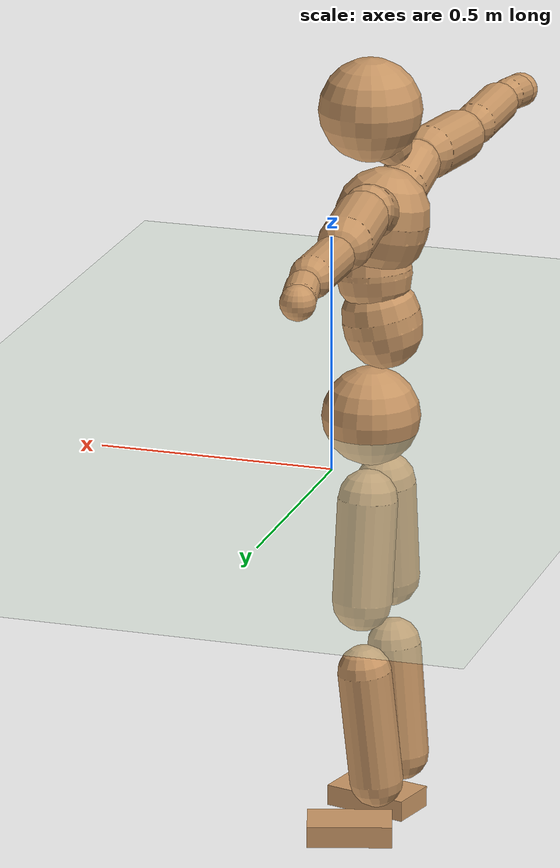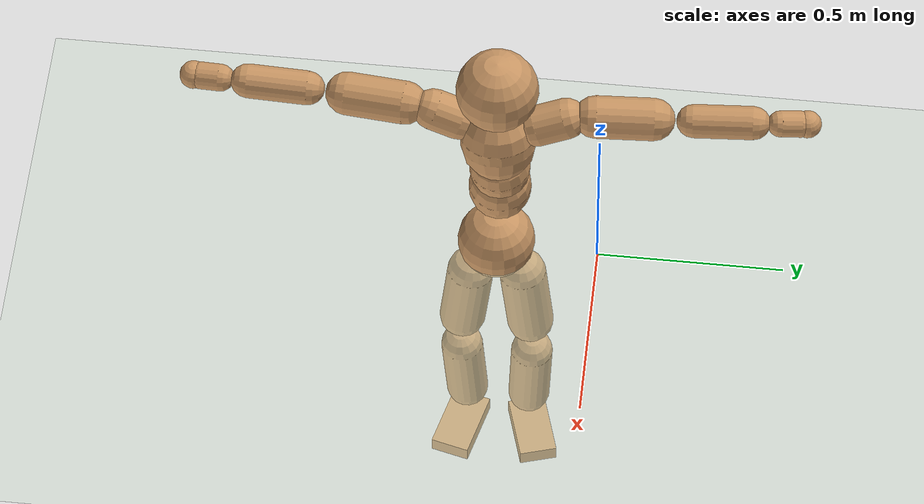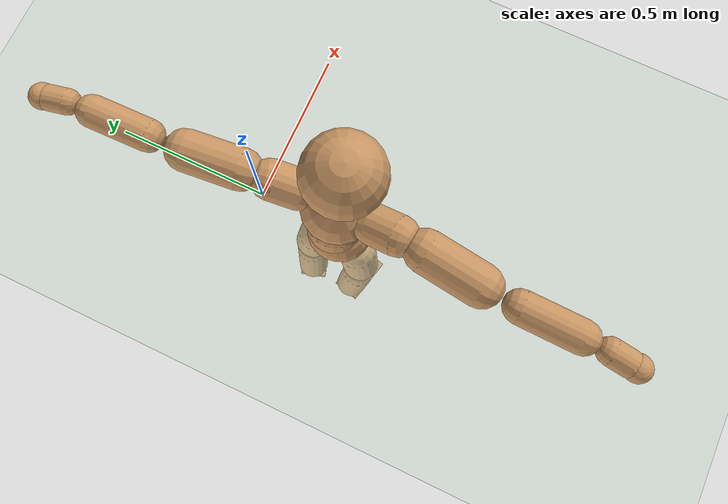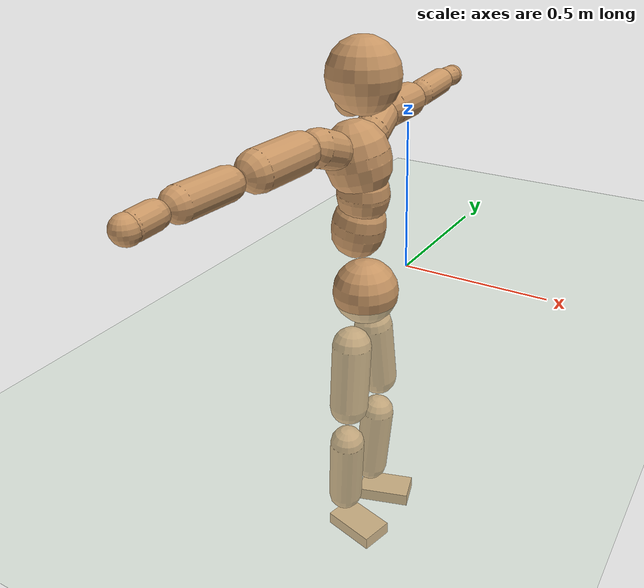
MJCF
<mujoco model="humanoid">
  <compiler coordinate="local"/>
  <default>
    <joint damping="0.0" armature="0.01" stiffness="0.0" limited="true"/>
    <geom conaffinity="1" condim="3" contype="7" margin="0.001" rgba="0.8 0.6 .4 1"/>
  </default>
  <asset>
    <texture type="skybox" builtin="gradient" rgb1=".4 .5 .6" rgb2="0 0 0" width="100" height="100"/>
    <texture builtin="flat" height="1278" mark="cross" markrgb="1 1 1" name="texgeom" random="0.01" rgb1="0.8 0.6 0.4" rgb2="0.8 0.6 0.4" type="cube" width="127"/>
    <texture builtin="checker" height="100" name="texplane" rgb1="0 0 0" rgb2="0.8 0.8 0.8" type="2d" width="100"/>
    <material name="MatPlane" reflectance="0.5" shininess="1" specular="1" texrepeat="60 60" texture="texplane"/>
    <material name="geom" texture="texgeom" texuniform="true"/>
  </asset>
  <worldbody>
    <light cutoff="100" diffuse="1 1 1" dir="-0 0 -1.3" directional="true" exponent="1" pos="0 0 1.3" specular=".1 .1 .1"/>
    <geom conaffinity="1" condim="3" name="floor" pos="0 0 0" rgba="0.8 0.9 0.8 1" size="100 100 .2" type="plane" material="MatPlane"/>
    <body name="Pelvis" pos="-0.0013 -0.2726 0.0303">
      <freejoint name="Pelvis"/>
      <geom type="sphere" contype="1" conaffinity="1" density="500" size="0.1047" pos="0.0000 0.0000 0.0000" name="Pelvis"/>
      <body name="L_Hip" pos="-0.0156 0.0623 -0.0874">
        <joint name="L_Hip_x" type="hinge" pos="0 0 0" axis="1 0 0" stiffness="800" damping="80" armature="0.02" range="-180.0000 180.0000"/>
        <joint name="L_Hip_y" type="hinge" pos="0 0 0" axis="0 1 0" stiffness="800" damping="80" armature="0.02" range="-180.0000 180.0000"/>
        <joint name="L_Hip_z" type="hinge" pos="0 0 0" axis="0 0 1" stiffness="800" damping="80" armature="0.02" range="-180.0000 180.0000"/>
        <geom type="capsule" contype="1" conaffinity="1" density="500" fromto="0.0014 0.0075 -0.0736 0.0057 0.0302 -0.2944" size="0.0635" name="L_Hip"/>
        <body name="L_Knee" pos="0.0071 0.0377 -0.368">
          <joint name="L_Knee_x" type="hinge" pos="0 0 0" axis="1 0 0" stiffness="800" damping="80" armature="0.02" range="-180.0000 180.0000"/>
          <joint name="L_Knee_y" type="hinge" pos="0 0 0" axis="0 1 0" stiffness="800" damping="80" armature="0.02" range="-180.0000 180.0000"/>
          <joint name="L_Knee_z" type="hinge" pos="0 0 0" axis="0 0 1" stiffness="800" damping="80" armature="0.02" range="-180.0000 180.0000"/>
          <geom type="capsule" contype="1" conaffinity="1" density="500" fromto="-0.0081 -0.0033 -0.0823 -0.0323 -0.0131 -0.3291" size="0.0575" name="L_Knee"/>
          <body name="L_Ankle" pos="-0.0403 -0.0163 -0.4114">
            <joint name="L_Ankle_x" type="hinge" pos="0 0 0" axis="1 0 0" stiffness="800" damping="80" armature="0.02" range="-180.0000 180.0000"/>
            <joint name="L_Ankle_y" type="hinge" pos="0 0 0" axis="0 1 0" stiffness="800" damping="80" armature="0.02" range="-180.0000 180.0000"/>
            <joint name="L_Ankle_z" type="hinge" pos="0 0 0" axis="0 0 1" stiffness="800" damping="80" armature="0.02" range="-180.0000 180.0000"/>
            <geom type="box" contype="1" conaffinity="1" density="500" pos="0.0625 0.0186 -0.0298" size="0.0905 0.0515 0.0234" quat="0.9896 0.0000 0.0000 0.1439" name="L_Ankle"/>
            <body name="L_Toe" pos="0.1251 0.0372 -0.0596">
              <joint name="L_Toe_x" type="hinge" pos="0 0 0" axis="1 0 0" stiffness="500" damping="50" armature="0.02" range="-180.0000 180.0000"/>
              <joint name="L_Toe_y" type="hinge" pos="0 0 0" axis="0 1 0" stiffness="500" damping="50" armature="0.02" range="-180.0000 180.0000"/>
              <joint name="L_Toe_z" type="hinge" pos="0 0 0" axis="0 0 1" stiffness="500" damping="50" armature="0.02" range="-180.0000 180.0000"/>
              <geom type="box" contype="1" conaffinity="1" density="500" pos="0.0000 0.0000 0.0290" size="0.0011 0.0025 0.0011" quat="0.9889 0.0000 0.0000 0.1489" name="L_Toe"/>
            </body>
          </body>
        </body>
      </body>
      <body name="R_Hip" pos="-0.0109 -0.064 -0.096">
        <joint name="R_Hip_x" type="hinge" pos="0 0 0" axis="1 0 0" stiffness="800" damping="80" armature="0.02" range="-180.0000 180.0000"/>
        <joint name="R_Hip_y" type="hinge" pos="0 0 0" axis="0 1 0" stiffness="800" damping="80" armature="0.02" range="-180.0000 180.0000"/>
        <joint name="R_Hip_z" type="hinge" pos="0 0 0" axis="0 0 1" stiffness="800" damping="80" armature="0.02" range="-180.0000 180.0000"/>
        <geom type="capsule" contype="1" conaffinity="1" density="500" fromto="-0.0009 -0.0079 -0.0735 -0.0036 -0.0315 -0.2941" size="0.0634" name="R_Hip"/>
        <body name="R_Knee" pos="-0.0045 -0.0394 -0.3676">
          <joint name="R_Knee_x" type="hinge" pos="0 0 0" axis="1 0 0" stiffness="800" damping="80" armature="0.02" range="-180.0000 180.0000"/>
          <joint name="R_Knee_y" type="hinge" pos="0 0 0" axis="0 1 0" stiffness="800" damping="80" armature="0.02" range="-180.0000 180.0000"/>
          <joint name="R_Knee_z" type="hinge" pos="0 0 0" axis="0 0 1" stiffness="800" damping="80" armature="0.02" range="-180.0000 180.0000"/>
          <geom type="capsule" contype="1" conaffinity="1" density="500" fromto="-0.0075 0.0040 -0.0810 -0.0298 0.0159 -0.3242" size="0.0576" name="R_Knee"/>
          <body name="R_Ankle" pos="-0.0373 0.0199 -0.4052">
            <joint name="R_Ankle_x" type="hinge" pos="0 0 0" axis="1 0 0" stiffness="800" damping="80" armature="0.02" range="-180.0000 180.0000"/>
            <joint name="R_Ankle_y" type="hinge" pos="0 0 0" axis="0 1 0" stiffness="800" damping="80" armature="0.02" range="-180.0000 180.0000"/>
            <joint name="R_Ankle_z" type="hinge" pos="0 0 0" axis="0 0 1" stiffness="800" damping="80" armature="0.02" range="-180.0000 180.0000"/>
            <geom type="box" contype="1" conaffinity="1" density="500" pos="0.0670 -0.0169 -0.0303" size="0.0927 0.0533 0.0227" quat="0.9924 0.0000 0.0000 -0.1234" name="R_Ankle"/>
            <body name="R_Toe" pos="0.1339 -0.0338 -0.0606">
              <joint name="R_Toe_x" type="hinge" pos="0 0 0" axis="1 0 0" stiffness="500" damping="50" armature="0.02" range="-180.0000 180.0000"/>
              <joint name="R_Toe_y" type="hinge" pos="0 0 0" axis="0 1 0" stiffness="500" damping="50" armature="0.02" range="-180.0000 180.0000"/>
              <joint name="R_Toe_z" type="hinge" pos="0 0 0" axis="0 0 1" stiffness="500" damping="50" armature="0.02" range="-180.0000 180.0000"/>
              <geom type="box" contype="1" conaffinity="1" density="500" pos="0.0000 0.0000 0.0316" size="0.0011 0.0026 0.0012" quat="0.9934 0.0000 0.0000 -0.1147" name="R_Toe"/>
            </body>
          </body>
        </body>
      </body>
      <body name="Torso" pos="-0.0411 0.0042 0.1346">
        <joint name="Torso_x" type="hinge" pos="0 0 0" axis="1 0 0" stiffness="1000" damping="100" armature="0.02" range="-180.0000 180.0000"/>
        <joint name="Torso_y" type="hinge" pos="0 0 0" axis="0 1 0" stiffness="1000" damping="100" armature="0.02" range="-180.0000 180.0000"/>
        <joint name="Torso_z" type="hinge" pos="0 0 0" axis="0 0 1" stiffness="1000" damping="100" armature="0.02" range="-180.0000 180.0000"/>
        <geom type="capsule" contype="1" conaffinity="1" density="500" fromto="0.0185 0.0035 0.0908 0.0123 0.0023 0.0605" size="0.083235" name="Torso"/>
        <body name="Spine" pos="0.0308 0.0059 0.1513">
          <joint name="Spine_x" type="hinge" pos="0 0 0" axis="1 0 0" stiffness="1000" damping="100" armature="0.02" range="-180.0000 180.0000"/>
          <joint name="Spine_y" type="hinge" pos="0 0 0" axis="0 1 0" stiffness="1000" damping="100" armature="0.02" range="-180.0000 180.0000"/>
          <joint name="Spine_z" type="hinge" pos="0 0 0" axis="0 0 1" stiffness="1000" damping="100" armature="0.02" range="-180.0000 180.0000"/>
          <geom type="capsule" contype="1" conaffinity="1" density="500" fromto="0.0030 -0.0018 0.0373 0.0020 -0.0012 0.0249" size="0.080724" name="Spine"/>
          <body name="Chest" pos="0.0049 -0.003 0.0621">
            <joint name="Chest_x" type="hinge" pos="0 0 0" axis="1 0 0" stiffness="1000" damping="100" armature="0.02" range="-180.0000 180.0000"/>
            <joint name="Chest_y" type="hinge" pos="0 0 0" axis="0 1 0" stiffness="1000" damping="100" armature="0.02" range="-180.0000 180.0000"/>
            <joint name="Chest_z" type="hinge" pos="0 0 0" axis="0 0 1" stiffness="1000" damping="100" armature="0.02" range="-180.0000 180.0000"/>
            <geom type="capsule" contype="1" conaffinity="1" density="500" fromto="-0.0195 -0.0050 0.0934 -0.0130 -0.0033 0.0622" size="0.099975" name="Chest"/>
            <body name="Neck" pos="-0.0442 -0.013 0.2265">
              <joint name="Neck_x" type="hinge" pos="0 0 0" axis="1 0 0" stiffness="500" damping="50" armature="0.02" range="-180.0000 180.0000"/>
              <joint name="Neck_y" type="hinge" pos="0 0 0" axis="0 1 0" stiffness="500" damping="50" armature="0.02" range="-180.0000 180.0000"/>
              <joint name="Neck_z" type="hinge" pos="0 0 0" axis="0 0 1" stiffness="500" damping="50" armature="0.02" range="-180.0000 180.0000"/>
              <geom type="capsule" contype="1" conaffinity="1" density="500" fromto="0.0104 0.0018 0.0181 0.0418 0.0073 0.0726" size="0.044268" name="Neck"/>
              <body name="Head" pos="0.0522 0.0092 0.0907">
                <joint name="Head_x" type="hinge" pos="0 0 0" axis="1 0 0" stiffness="500" damping="50" armature="0.02" range="-180.0000 180.0000"/>
                <joint name="Head_y" type="hinge" pos="0 0 0" axis="0 1 0" stiffness="500" damping="50" armature="0.02" range="-180.0000 180.0000"/>
                <joint name="Head_z" type="hinge" pos="0 0 0" axis="0 0 1" stiffness="500" damping="50" armature="0.02" range="-180.0000 180.0000"/>
                <geom type="sphere" contype="1" conaffinity="1" density="500" size="0.1087" pos="0.0000 0.0000 0.0000" name="Head"/>
              </body>
            </body>
            <body name="L_Thorax" pos="-0.0246 0.0722 0.1208">
              <joint name="L_Thorax_x" type="hinge" pos="0 0 0" axis="1 0 0" stiffness="500" damping="50" armature="0.02" range="-180.0000 180.0000"/>
              <joint name="L_Thorax_y" type="hinge" pos="0 0 0" axis="0 1 0" stiffness="500" damping="50" armature="0.02" range="-180.0000 180.0000"/>
              <joint name="L_Thorax_z" type="hinge" pos="0 0 0" axis="0 0 1" stiffness="500" damping="50" armature="0.02" range="-180.0000 180.0000"/>
              <geom type="capsule" contype="1" conaffinity="1" density="500" fromto="-0.0041 0.0250 0.0085 -0.0166 0.0999 0.0341" size="0.0546" name="L_Thorax"/>
              <body name="L_Shoulder" pos="-0.0207 0.1248 0.0426">
                <joint name="L_Shoulder_x" type="hinge" pos="0 0 0" axis="1 0 0" stiffness="500" damping="50" armature="0.02" range="-720.0000 720.0000"/>
                <joint name="L_Shoulder_y" type="hinge" pos="0 0 0" axis="0 1 0" stiffness="500" damping="50" armature="0.02" range="-720.0000 720.0000"/>
                <joint name="L_Shoulder_z" type="hinge" pos="0 0 0" axis="0 0 1" stiffness="500" damping="50" armature="0.02" range="-720.0000 720.0000"/>
                <geom type="capsule" contype="1" conaffinity="1" density="500" fromto="-0.0043 0.0506 -0.0025 -0.0174 0.2024 -0.0100" size="0.0568" name="L_Shoulder"/>
                <body name="L_Elbow" pos="-0.0217 0.253 -0.0125">
                  <joint name="L_Elbow_x" type="hinge" pos="0 0 0" axis="1 0 0" stiffness="500" damping="50" armature="0.02" range="-720.0000 720.0000"/>
                  <joint name="L_Elbow_y" type="hinge" pos="0 0 0" axis="0 1 0" stiffness="500" damping="50" armature="0.02" range="-720.0000 720.0000"/>
                  <joint name="L_Elbow_z" type="hinge" pos="0 0 0" axis="0 0 1" stiffness="500" damping="50" armature="0.02" range="-720.0000 720.0000"/>
                  <geom type="capsule" contype="1" conaffinity="1" density="500" fromto="-0.0015 0.0526 0.0024 -0.0060 0.2102 0.0094" size="0.0444" name="L_Elbow"/>
                  <body name="L_Wrist" pos="-0.0075 0.2628 0.0118">
                    <joint name="L_Wrist_x" type="hinge" pos="0 0 0" axis="1 0 0" stiffness="300" damping="30" armature="0.02" range="-180.0000 180.0000"/>
                    <joint name="L_Wrist_y" type="hinge" pos="0 0 0" axis="0 1 0" stiffness="300" damping="30" armature="0.02" range="-180.0000 180.0000"/>
                    <joint name="L_Wrist_z" type="hinge" pos="0 0 0" axis="0 0 1" stiffness="300" damping="30" armature="0.02" range="-180.0000 180.0000"/>
                    <geom type="capsule" contype="1" conaffinity="1" density="500" fromto="-0.0031 0.0176 -0.0021 -0.0125 0.0706 -0.0085" size="0.0352" name="L_Wrist"/>
                    <body name="L_Hand" pos="-0.0157 0.0882 -0.0107">
                      <joint name="L_Hand_x" type="hinge" pos="0 0 0" axis="1 0 0" stiffness="300" damping="30" armature="0.02" range="-180.0000 180.0000"/>
                      <joint name="L_Hand_y" type="hinge" pos="0 0 0" axis="0 1 0" stiffness="300" damping="30" armature="0.02" range="-180.0000 180.0000"/>
                      <joint name="L_Hand_z" type="hinge" pos="0 0 0" axis="0 0 1" stiffness="300" damping="30" armature="0.02" range="-180.0000 180.0000"/>
                      <geom type="sphere" contype="1" conaffinity="1" density="500" size="0.0364" pos="0.0000 0.0000 0.0000" name="L_Hand"/>
                    </body>
                  </body>
                </body>
              </body>
            </body>
            <body name="R_Thorax" pos="-0.0285 -0.0842 0.1194">
              <joint name="R_Thorax_x" type="hinge" pos="0 0 0" axis="1 0 0" stiffness="500" damping="50" armature="0.02" range="-180.0000 180.0000"/>
              <joint name="R_Thorax_y" type="hinge" pos="0 0 0" axis="0 1 0" stiffness="500" damping="50" armature="0.02" range="-180.0000 180.0000"/>
              <joint name="R_Thorax_z" type="hinge" pos="0 0 0" axis="0 0 1" stiffness="500" damping="50" armature="0.02" range="-180.0000 180.0000"/>
              <geom type="capsule" contype="1" conaffinity="1" density="500" fromto="-0.0019 -0.0232 0.0087 -0.0074 -0.0928 0.0350" size="0.0548" name="R_Thorax"/>
              <body name="R_Shoulder" pos="-0.0093 -0.116 0.0437">
                <joint name="R_Shoulder_x" type="hinge" pos="0 0 0" axis="1 0 0" stiffness="500" damping="50" armature="0.02" range="-720.0000 720.0000"/>
                <joint name="R_Shoulder_y" type="hinge" pos="0 0 0" axis="0 1 0" stiffness="500" damping="50" armature="0.02" range="-720.0000 720.0000"/>
                <joint name="R_Shoulder_z" type="hinge" pos="0 0 0" axis="0 0 1" stiffness="500" damping="50" armature="0.02" range="-720.0000 720.0000"/>
                <geom type="capsule" contype="1" conaffinity="1" density="500" fromto="-0.0063 -0.0517 -0.0019 -0.0251 -0.2069 -0.0077" size="0.0577" name="R_Shoulder"/>
                <body name="R_Elbow" pos="-0.0314 -0.2586 -0.0096">
                  <joint name="R_Elbow_x" type="hinge" pos="0 0 0" axis="1 0 0" stiffness="500" damping="50" armature="0.02" range="-720.0000 720.0000"/>
                  <joint name="R_Elbow_y" type="hinge" pos="0 0 0" axis="0 1 0" stiffness="500" damping="50" armature="0.02" range="-720.0000 720.0000"/>
                  <joint name="R_Elbow_z" type="hinge" pos="0 0 0" axis="0 0 1" stiffness="500" damping="50" armature="0.02" range="-720.0000 720.0000"/>
                  <geom type="capsule" contype="1" conaffinity="1" density="500" fromto="-0.0014 -0.0533 0.0012 -0.0054 -0.2133 0.0050" size="0.0454" name="R_Elbow"/>
                  <body name="R_Wrist" pos="-0.0068 -0.2667 0.0062">
                    <joint name="R_Wrist_x" type="hinge" pos="0 0 0" axis="1 0 0" stiffness="300" damping="30" armature="0.02" range="-180.0000 180.0000"/>
                    <joint name="R_Wrist_y" type="hinge" pos="0 0 0" axis="0 1 0" stiffness="300" damping="30" armature="0.02" range="-180.0000 180.0000"/>
                    <joint name="R_Wrist_z" type="hinge" pos="0 0 0" axis="0 0 1" stiffness="300" damping="30" armature="0.02" range="-180.0000 180.0000"/>
                    <geom type="capsule" contype="1" conaffinity="1" density="500" fromto="-0.0020 -0.0183 -0.0018 -0.0080 -0.0732 -0.0071" size="0.0364" name="R_Wrist"/>
                    <body name="R_Hand" pos="-0.01 -0.0915 -0.0089">
                      <joint name="R_Hand_x" type="hinge" pos="0 0 0" axis="1 0 0" stiffness="300" damping="30" armature="0.02" range="-180.0000 180.0000"/>
                      <joint name="R_Hand_y" type="hinge" pos="0 0 0" axis="0 1 0" stiffness="300" damping="30" armature="0.02" range="-180.0000 180.0000"/>
                      <joint name="R_Hand_z" type="hinge" pos="0 0 0" axis="0 0 1" stiffness="300" damping="30" armature="0.02" range="-180.0000 180.0000"/>
                      <geom type="sphere" contype="1" conaffinity="1" density="500" size="0.0373" pos="0.0000 0.0000 0.0000" name="R_Hand"/>
                    </body>
                  </body>
                </body>
              </body>
            </body>
          </body>
        </body>
      </body>
    </body>
  </worldbody>
  <actuator>
    <motor name="L_Hip_x" joint="L_Hip_x" gear="500"/>
    <motor name="L_Hip_y" joint="L_Hip_y" gear="500"/>
    <motor name="L_Hip_z" joint="L_Hip_z" gear="500"/>
    <motor name="L_Knee_x" joint="L_Knee_x" gear="500"/>
    <motor name="L_Knee_y" joint="L_Knee_y" gear="500"/>
    <motor name="L_Knee_z" joint="L_Knee_z" gear="500"/>
    <motor name="L_Ankle_x" joint="L_Ankle_x" gear="500"/>
    <motor name="L_Ankle_y" joint="L_Ankle_y" gear="500"/>
    <motor name="L_Ankle_z" joint="L_Ankle_z" gear="500"/>
    <motor name="L_Toe_x" joint="L_Toe_x" gear="500"/>
    <motor name="L_Toe_y" joint="L_Toe_y" gear="500"/>
    <motor name="L_Toe_z" joint="L_Toe_z" gear="500"/>
    <motor name="R_Hip_x" joint="R_Hip_x" gear="500"/>
    <motor name="R_Hip_y" joint="R_Hip_y" gear="500"/>
    <motor name="R_Hip_z" joint="R_Hip_z" gear="500"/>
    <motor name="R_Knee_x" joint="R_Knee_x" gear="500"/>
    <motor name="R_Knee_y" joint="R_Knee_y" gear="500"/>
    <motor name="R_Knee_z" joint="R_Knee_z" gear="500"/>
    <motor name="R_Ankle_x" joint="R_Ankle_x" gear="500"/>
    <motor name="R_Ankle_y" joint="R_Ankle_y" gear="500"/>
    <motor name="R_Ankle_z" joint="R_Ankle_z" gear="500"/>
    <motor name="R_Toe_x" joint="R_Toe_x" gear="500"/>
    <motor name="R_Toe_y" joint="R_Toe_y" gear="500"/>
    <motor name="R_Toe_z" joint="R_Toe_z" gear="500"/>
    <motor name="Torso_x" joint="Torso_x" gear="500"/>
    <motor name="Torso_y" joint="Torso_y" gear="500"/>
    <motor name="Torso_z" joint="Torso_z" gear="500"/>
    <motor name="Spine_x" joint="Spine_x" gear="500"/>
    <motor name="Spine_y" joint="Spine_y" gear="500"/>
    <motor name="Spine_z" joint="Spine_z" gear="500"/>
    <motor name="Chest_x" joint="Chest_x" gear="500"/>
    <motor name="Chest_y" joint="Chest_y" gear="500"/>
    <motor name="Chest_z" joint="Chest_z" gear="500"/>
    <motor name="Neck_x" joint="Neck_x" gear="500"/>
    <motor name="Neck_y" joint="Neck_y" gear="500"/>
    <motor name="Neck_z" joint="Neck_z" gear="500"/>
    <motor name="Head_x" joint="Head_x" gear="500"/>
    <motor name="Head_y" joint="Head_y" gear="500"/>
    <motor name="Head_z" joint="Head_z" gear="500"/>
    <motor name="L_Thorax_x" joint="L_Thorax_x" gear="500"/>
    <motor name="L_Thorax_y" joint="L_Thorax_y" gear="500"/>
    <motor name="L_Thorax_z" joint="L_Thorax_z" gear="500"/>
    <motor name="L_Shoulder_x" joint="L_Shoulder_x" gear="500"/>
    <motor name="L_Shoulder_y" joint="L_Shoulder_y" gear="500"/>
    <motor name="L_Shoulder_z" joint="L_Shoulder_z" gear="500"/>
    <motor name="L_Elbow_x" joint="L_Elbow_x" gear="500"/>
    <motor name="L_Elbow_y" joint="L_Elbow_y" gear="500"/>
    <motor name="L_Elbow_z" joint="L_Elbow_z" gear="500"/>
    <motor name="L_Wrist_x" joint="L_Wrist_x" gear="500"/>
    <motor name="L_Wrist_y" joint="L_Wrist_y" gear="500"/>
    <motor name="L_Wrist_z" joint="L_Wrist_z" gear="500"/>
    <motor name="L_Hand_x" joint="L_Hand_x" gear="500"/>
    <motor name="L_Hand_y" joint="L_Hand_y" gear="500"/>
    <motor name="L_Hand_z" joint="L_Hand_z" gear="500"/>
    <motor name="R_Thorax_x" joint="R_Thorax_x" gear="500"/>
    <motor name="R_Thorax_y" joint="R_Thorax_y" gear="500"/>
    <motor name="R_Thorax_z" joint="R_Thorax_z" gear="500"/>
    <motor name="R_Shoulder_x" joint="R_Shoulder_x" gear="500"/>
    <motor name="R_Shoulder_y" joint="R_Shoulder_y" gear="500"/>
    <motor name="R_Shoulder_z" joint="R_Shoulder_z" gear="500"/>
    <motor name="R_Elbow_x" joint="R_Elbow_x" gear="500"/>
    <motor name="R_Elbow_y" joint="R_Elbow_y" gear="500"/>
    <motor name="R_Elbow_z" joint="R_Elbow_z" gear="500"/>
    <motor name="R_Wrist_x" joint="R_Wrist_x" gear="500"/>
    <motor name="R_Wrist_y" joint="R_Wrist_y" gear="500"/>
    <motor name="R_Wrist_z" joint="R_Wrist_z" gear="500"/>
    <motor name="R_Hand_x" joint="R_Hand_x" gear="500"/>
    <motor name="R_Hand_y" joint="R_Hand_y" gear="500"/>
    <motor name="R_Hand_z" joint="R_Hand_z" gear="500"/>
  </actuator>
  <contact>
    <exclude body1="Torso" body2="Chest"/>
    <exclude body1="Head" body2="Chest"/>
    <exclude body1="R_Knee" body2="R_Toe"/>
    <exclude body1="R_Knee" body2="L_Ankle"/>
    <exclude body1="R_Knee" body2="L_Toe"/>
    <exclude body1="L_Knee" body2="L_Toe"/>
    <exclude body1="L_Knee" body2="R_Ankle"/>
    <exclude body1="L_Knee" body2="R_Toe"/>
    <exclude body1="L_Shoulder" body2="Chest"/>
    <exclude body1="R_Shoulder" body2="Chest"/>
  </contact>
  <sensor/>
  <size njmax="700" nconmax="700"/>
</mujoco>
